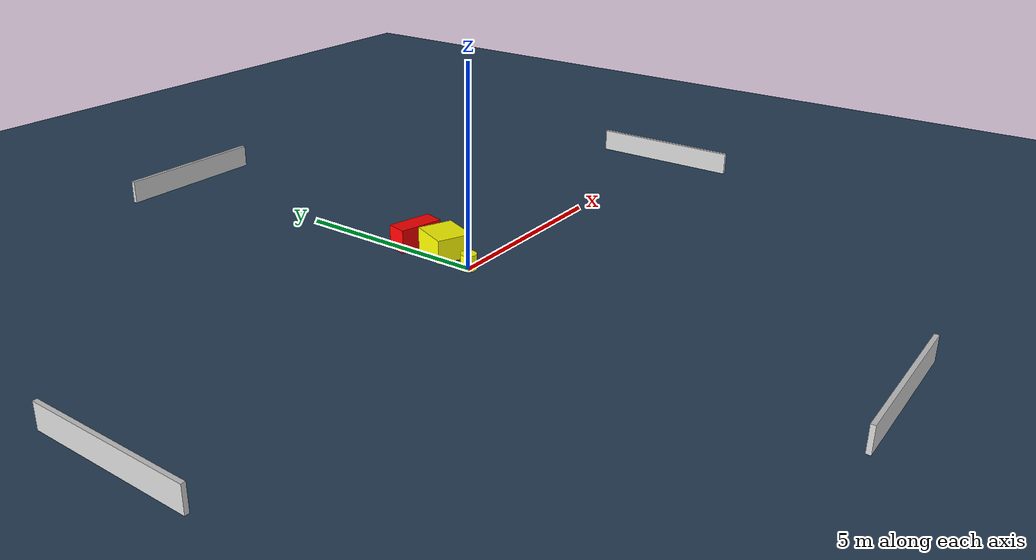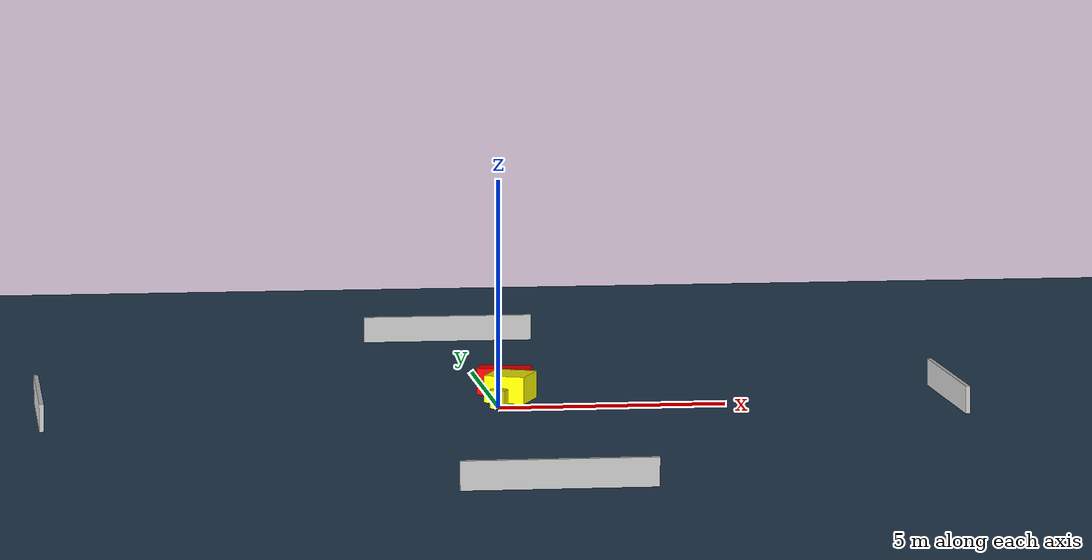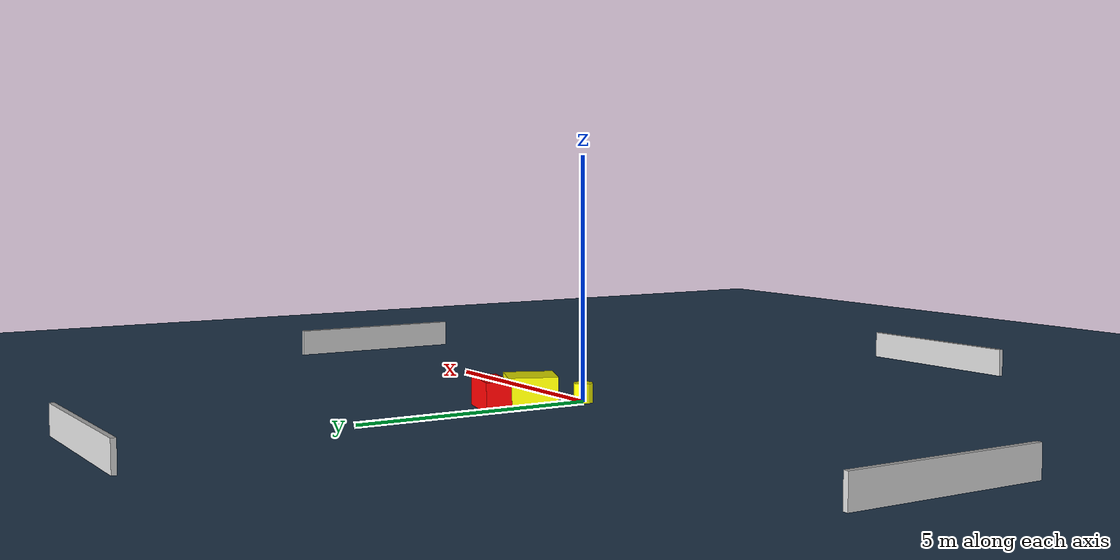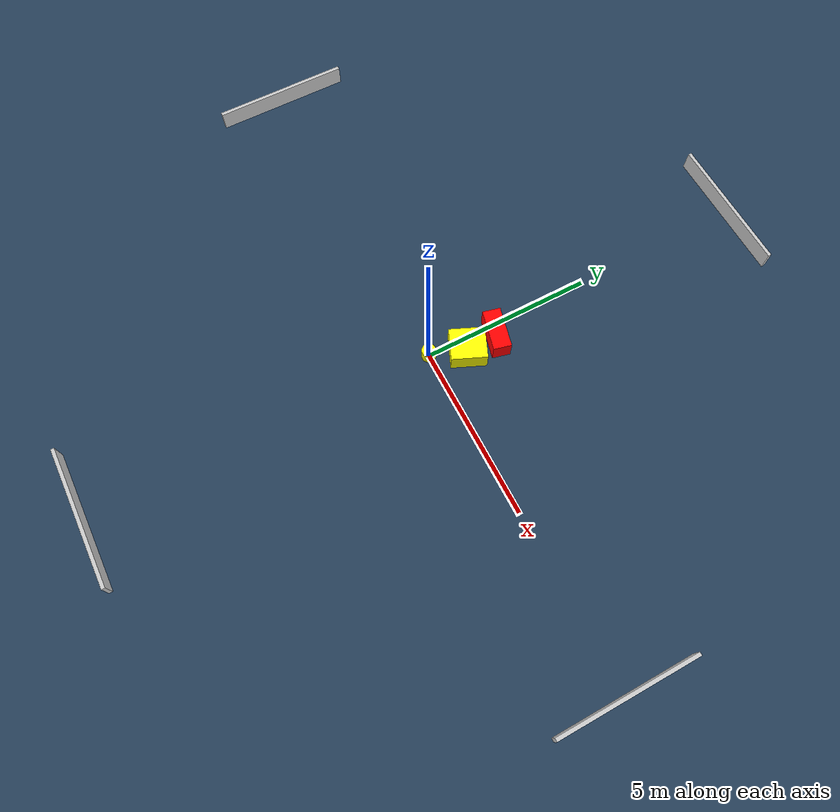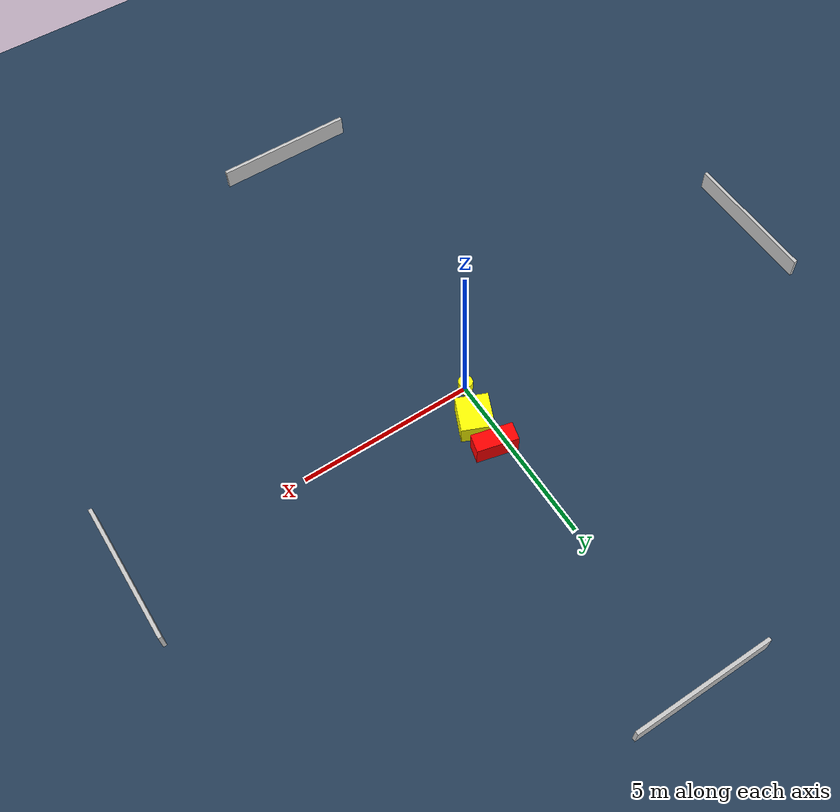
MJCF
<?xml version="1.0" ?>
<mujoco model="generated_environment">
  <option timestep="0.01" integrator="RK4" cone="elliptic"/>
  <default>
    <geom density="1"/>
  </default>
  <asset>
    <texture builtin="gradient" height="3072" name="skybox" rgb1="0.3 0.5 0.7" rgb2="0 0 0" type="skybox" width="512"/>
    <texture builtin="checker" height="300" name="groundplane" rgb1="0.2 0.3 0.4" rgb2="0.1 0.2 0.3" type="2d" width="300"/>
    <material name="groundplane" reflectance="0.2" texrepeat="5 5" texture="groundplane"/>
  </asset>
  <worldbody>
    <light dir="0 0 -1" directional="true" pos="0 0 1.5"/>
    <geom condim="3" friction="0.5 0.005 0.001" material="groundplane" name="floor" pos="0 0 0" size="0 0 0.05" type="plane"/>
    <body name="walls">
      <geom name="wall_1" condim="4" pos="-10.0 0.0 0.3" rgba="0.800000011920929 0.800000011920929 0.800000011920929 1.0" size="0.05 2.0 0.3" type="box"/>
      <geom name="wall_2" condim="4" pos="10.0 0.0 0.3" rgba="0.800000011920929 0.800000011920929 0.800000011920929 1.0" size="0.05 2.0 0.3" type="box"/>
      <geom name="wall_3" condim="4" pos="0.0 -10.0 0.3" rgba="0.800000011920929 0.800000011920929 0.800000011920929 1.0" size="2.0 0.05 0.3" type="box"/>
      <geom name="wall_4" condim="4" pos="0.0 10.0 0.3" rgba="0.800000011920929 0.800000011920929 0.800000011920929 1.0" size="2.0 0.05 0.3" type="box"/>
    </body>
    <body name="robot">
      <joint name="joint_x" type="slide" pos="0 0 0" axis="1 0 0"/>
      <joint name="joint_y" type="slide" pos="0 0 0" axis="0 1 0"/>
      <geom name="robot" type="cylinder" pos="0.0 0.0 0.2" size="0.2 0.2 0.0" mass="5.0" friction="1.0 0.005 0.0001" condim="4" rgba="1.0 1.0 0.0 1.0"/>
    </body>
    <body name="obstacle_1_movable">
      <geom name="obstacle_1_movable" condim="4" pos="0.38528128891072433 1.0142965086008273 0.3" euler="0 0 336.66753475557925" friction="0.0 0.005 0.001" rgba="1.0 1.0 0.0 1.0" size="0.455029795210941 0.5076409912012254 0.3" type="box" mass="0.1"/>
      <joint type="free"/>
    </body>
    <body name="obstacle_2_static">
      <geom name="obstacle_2_static" condim="4" pos="0.3700520970613558 1.9300258755728976 0.3" euler="0 0 256.11863307579114" friction="0.0 0.005 0.001" rgba="1.0 0.0 0.0 1.0" size="0.25927168008823215 0.5861909276813362 0.3" type="box"/>
    </body>
  </worldbody>
  <actuator>
    <motor name="actuator_x" joint="joint_x" gear="1" ctrlrange="-1 1"/>
    <motor name="actuator_y" joint="joint_y" gear="1" ctrlrange="-1 1"/>
  </actuator>
</mujoco>
